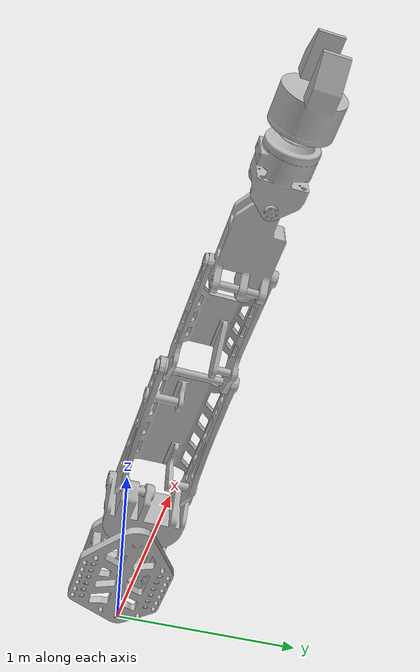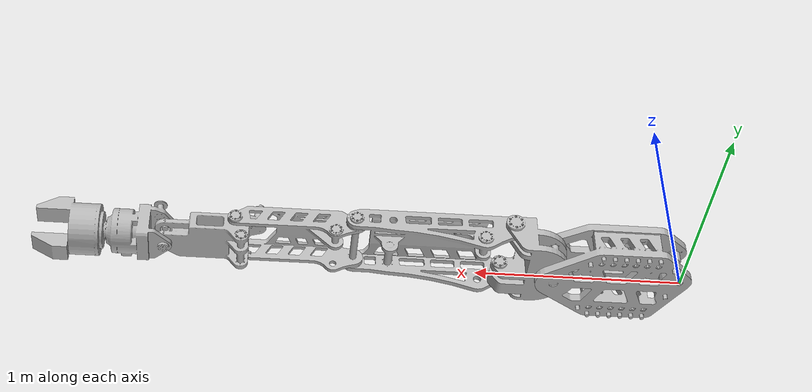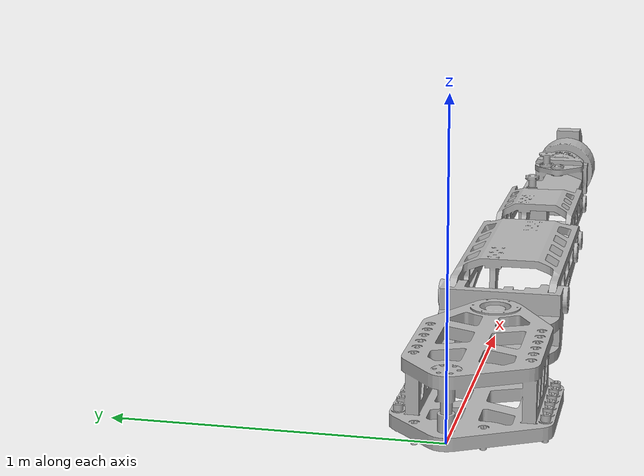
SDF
<sdf version='1.6'>
  <model name='SLAVE_ARM2'>

    <joint name="fixed to ground" type="fixed">
      <parent>world</parent>
      <child>BASE</child>
    </joint>

    <link name='BASE'>
      <pose frame=''>0 0 0 0 -0 0</pose>
      <inertial>
        <pose frame=''>0.29533 -0.048851 0.1022 0 -0 0</pose>
        <mass>18.677</mass>
        <inertia>
          <ixx>0.46316</ixx>
          <ixy>-0.017348</ixy>
          <ixz>0</ixz>
          <iyy>0.78313</iyy>
          <iyz>0</iyz>
          <izz>0.97746</izz>
        </inertia>
      </inertial>
      <collision name='BASE_collision'>
        <pose frame=''>0 0 0 0 -0 0</pose>
        <geometry>
          <mesh>
            <scale>1 1 1</scale>
            <uri>model://SLAVE_ARM2/meshes/BASE.STL</uri>
          </mesh>
        </geometry>
      </collision>
      <visual name='BASE_visual'>
        <pose frame=''>0 0 0 0 -0 0</pose>
        <geometry>
          <mesh>
            <scale>1 1 1</scale>
            <uri>model://SLAVE_ARM2/meshes/BASE.STL</uri>
          </mesh>
        </geometry>
      </visual>
    </link>
    <link name='LINK1'>
      <pose frame=''>0.608 -0.052 0.111 0 -0 0</pose>
      <inertial>
        <pose frame=''>0.11039 -0.013719 0.018917 0 -0 0</pose>
        <mass>10.337</mass>
        <inertia>
          <ixx>0.16943</ixx>
          <ixy>-0.014979</ixy>
          <ixz>0.0092941</ixz>
          <iyy>0.10174</iyy>
          <iyz>0</iyz>
          <izz>0.20482</izz>
        </inertia>
      </inertial>
      <collision name='LINK1_collision'>
        <pose frame=''>0 0 0 0 -0 0</pose>
        <geometry>
          <mesh>
            <scale>1 1 1</scale>
            <uri>model://SLAVE_ARM2/meshes/LINK1.STL</uri>
          </mesh>
        </geometry>
      </collision>
      <visual name='LINK1_visual'>
        <pose frame=''>0 0 0 0 -0 0</pose>
        <geometry>
          <mesh>
            <scale>1 1 1</scale>
            <uri>model://SLAVE_ARM2/meshes/LINK1.STL</uri>
          </mesh>
        </geometry>
      </visual>
    </link>
    <joint name='LINK1_JOINT' type='revolute'>
      <child>LINK1</child>
      <parent>BASE</parent>
      <axis>
        <xyz>0 0 1</xyz>
        <limit>
          <lower>-1e+16</lower>
          <upper>1e+16</upper>
        </limit>
        <dynamics>
          <spring_reference>0</spring_reference>
          <spring_stiffness>0</spring_stiffness>
        </dynamics>
        <use_parent_model_frame>1</use_parent_model_frame>
      </axis>
    </joint>
    <link name='LINK2'>
      <pose frame=''>0.808 -0.052 0.201 0 -0 0</pose>
      <inertial>
        <pose frame=''>0.38704 0.001282 0.021917 0 -0 0</pose>
        <mass>9.5851</mass>
        <inertia>
          <ixx>0.1866</ixx>
          <ixy>-0.016571</ixy>
          <ixz>0.023672</ixz>
          <iyy>0.52143</iyy>
          <iyz>0</iyz>
          <izz>0.64609</izz>
        </inertia>
      </inertial>
      <collision name='LINK2_collision'>
        <pose frame=''>0 0 0 0 -0 0</pose>
        <geometry>
          <mesh>
            <scale>1 1 1</scale>
            <uri>model://SLAVE_ARM2/meshes/LINK2.STL</uri>
          </mesh>
        </geometry>
      </collision>
      <visual name='LINK2_visual'>
        <pose frame=''>0 0 0 0 -0 0</pose>
        <geometry>
          <mesh>
            <scale>1 1 1</scale>
            <uri>model://SLAVE_ARM2/meshes/LINK2.STL</uri>
          </mesh>
        </geometry>
      </visual>
    </link>
    <joint name='LINK2_JOINT' type='revolute'>
      <child>LINK2</child>
      <parent>LINK1</parent>
      <axis>
        <xyz>0 1 0</xyz>
        <limit>
          <lower>-1e+16</lower>
          <upper>1e+16</upper>
        </limit>
        <dynamics>
          <spring_reference>0</spring_reference>
          <spring_stiffness>0</spring_stiffness>
        </dynamics>
        <use_parent_model_frame>1</use_parent_model_frame>
      </axis>
    </joint>
    <link name='LINK3'>
      <pose frame=''>1.573 -0.052 0.201 0 -0 0</pose>
      <inertial>
        <pose frame=''>0.25126 0.006018 0.030861 0 -0 0</pose>
        <mass>4.6467</mass>
        <inertia>
          <ixx>0.064981</ixx>
          <ixy>0</ixy>
          <ixz>0</ixz>
          <iyy>0.1378</iyy>
          <iyz>0</iyz>
          <izz>0.18077</izz>
        </inertia>
      </inertial>
      <collision name='LINK3_collision'>
        <pose frame=''>0 0 0 0 -0 0</pose>
        <geometry>
          <mesh>
            <scale>1 1 1</scale>
            <uri>model://SLAVE_ARM2/meshes/LINK3.STL</uri>
          </mesh>
        </geometry>
      </collision>
      <visual name='LINK3_visual'>
        <pose frame=''>0 0 0 0 -0 0</pose>
        <geometry>
          <mesh>
            <scale>1 1 1</scale>
            <uri>model://SLAVE_ARM2/meshes/LINK3.STL</uri>
          </mesh>
        </geometry>
      </visual>
    </link>
    <joint name='LINK3_JOINT' type='revolute'>
      <child>LINK3</child>
      <parent>LINK2</parent>
      <axis>
        <xyz>0 1 0</xyz>
        <limit>
          <lower>-1e+16</lower>
          <upper>1e+16</upper>
        </limit>
        <dynamics>
          <spring_reference>0</spring_reference>
          <spring_stiffness>0</spring_stiffness>
        </dynamics>
        <use_parent_model_frame>1</use_parent_model_frame>
      </axis>
    </joint>
    <link name='LINK4'>
      <pose frame=''>2.155 -0.052 0.201 0 -0 0</pose>
      <inertial>
        <pose frame=''>0.096298 0.005971 -0.013363 0 -0 0</pose>
        <mass>6.0823</mass>
        <inertia>
          <ixx>0.032953</ixx>
          <ixy>-0.01246</ixy>
          <ixz>0</ixz>
          <iyy>0.1069</iyy>
          <iyz>0</iyz>
          <izz>0.11961</izz>
        </inertia>
      </inertial>
      <collision name='LINK4_collision'>
        <pose frame=''>0 0 0 0 -0 0</pose>
        <geometry>
          <mesh>
            <scale>1 1 1</scale>
            <uri>model://SLAVE_ARM2/meshes/LINK4.STL</uri>
          </mesh>
        </geometry>
      </collision>
      <visual name='LINK4_visual'>
        <pose frame=''>0 0 0 0 -0 0</pose>
        <geometry>
          <mesh>
            <scale>1 1 1</scale>
            <uri>model://SLAVE_ARM2/meshes/LINK4.STL</uri>
          </mesh>
        </geometry>
      </visual>
    </link>
    <joint name='LINK4_JOINT' type='revolute'>
      <child>LINK4</child>
      <parent>LINK3</parent>
      <axis>
        <xyz>0 1 0</xyz>
        <limit>
          <lower>-1e+16</lower>
          <upper>1e+16</upper>
        </limit>
        <dynamics>
          <spring_reference>0</spring_reference>
          <spring_stiffness>0</spring_stiffness>
        </dynamics>
        <use_parent_model_frame>1</use_parent_model_frame>
      </axis>
    </joint>
    <link name='LINK5'>
      <pose frame=''>2.495 -0.052 0.191 0 -0 0</pose>
      <inertial>
        <pose frame=''>0.15128 -0.000396 0.001188 0 -0 0</pose>
        <mass>7.0927</mass>
        <inertia>
          <ixx>0.044594</ixx>
          <ixy>0.00072634</ixy>
          <ixz>0.0010377</ixz>
          <iyy>0.059768</iyy>
          <iyz>-0.00044615</iyz>
          <izz>0.05698</izz>
        </inertia>
      </inertial>
      <collision name='LINK5_collision'>
        <pose frame=''>0 0 0 0 -0 0</pose>
        <geometry>
          <mesh>
            <scale>1 1 1</scale>
            <uri>model://SLAVE_ARM2/meshes/LINK5.STL</uri>
          </mesh>
        </geometry>
      </collision>
      <visual name='LINK5_visual'>
        <pose frame=''>0 0 0 0 -0 0</pose>
        <geometry>
          <mesh>
            <scale>1 1 1</scale>
            <uri>model://SLAVE_ARM2/meshes/LINK5.STL</uri>
          </mesh>
        </geometry>
      </visual>
    </link>
    <joint name='LINK5_JOINT' type='revolute'>
      <child>LINK5</child>
      <parent>LINK4</parent>
      <axis>
        <xyz>0 0 1</xyz>
        <limit>
          <lower>-1e+16</lower>
          <upper>1e+16</upper>
        </limit>
        <dynamics>
          <spring_reference>0</spring_reference>
          <spring_stiffness>0</spring_stiffness>
        </dynamics>
        <use_parent_model_frame>1</use_parent_model_frame>
      </axis>
    </joint>
    <link name='LINK6'>
      <pose frame=''>2.78662 -0.052 0.191 0 -0 0</pose>
      <inertial>
        <pose frame=''>0.11622 0 0 0 -0 0</pose>
        <mass>9.3631</mass>
        <inertia>
          <ixx>0.084239</ixx>
          <ixy>0</ixy>
          <ixz>0</ixz>
          <iyy>0.10785</iyy>
          <iyz>0</iyz>
          <izz>0.082741</izz>
        </inertia>
      </inertial>
      <collision name='LINK6_collision'>
        <pose frame=''>0 0 0 0 -0 0</pose>
        <geometry>
          <mesh>
            <scale>1 1 1</scale>
            <uri>model://SLAVE_ARM2/meshes/LINK6.STL</uri>
          </mesh>
        </geometry>
      </collision>
      <visual name='LINK6_visual'>
        <pose frame=''>0 0 0 0 -0 0</pose>
        <geometry>
          <mesh>
            <scale>1 1 1</scale>
            <uri>model://SLAVE_ARM2/meshes/LINK6.STL</uri>
          </mesh>
        </geometry>
      </visual>
    </link>
    <joint name='LINK6_JOINT' type='revolute'>
      <child>LINK6</child>
      <parent>LINK5</parent>
      <axis>
        <xyz>1 0 0</xyz>
        <limit>
          <lower>-1e+16</lower>
          <upper>1e+16</upper>
        </limit>
        <dynamics>
          <spring_reference>0</spring_reference>
          <spring_stiffness>0</spring_stiffness>
        </dynamics>
        <use_parent_model_frame>1</use_parent_model_frame>
      </axis>
    </joint>
  </model>
</sdf>
